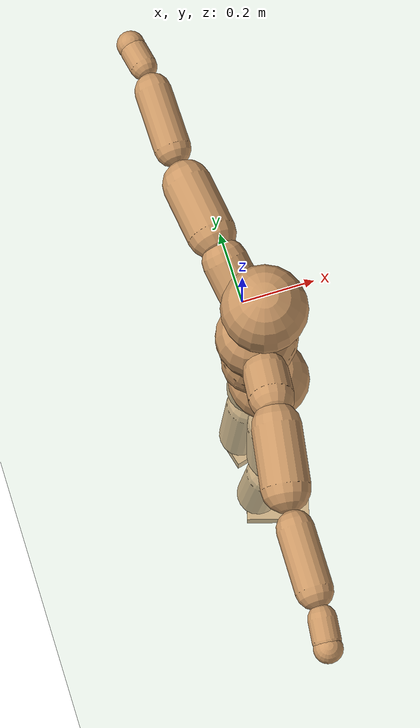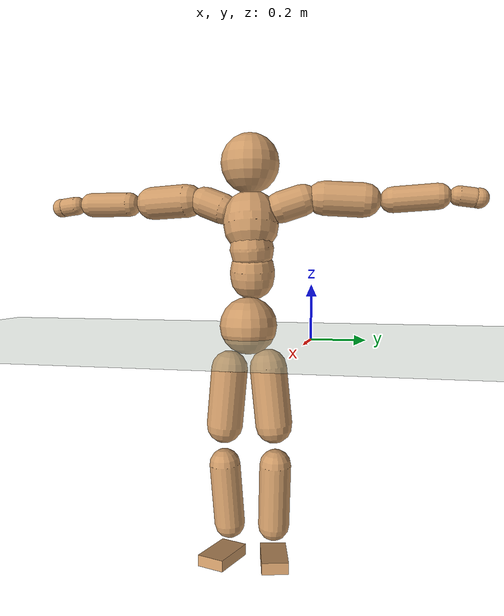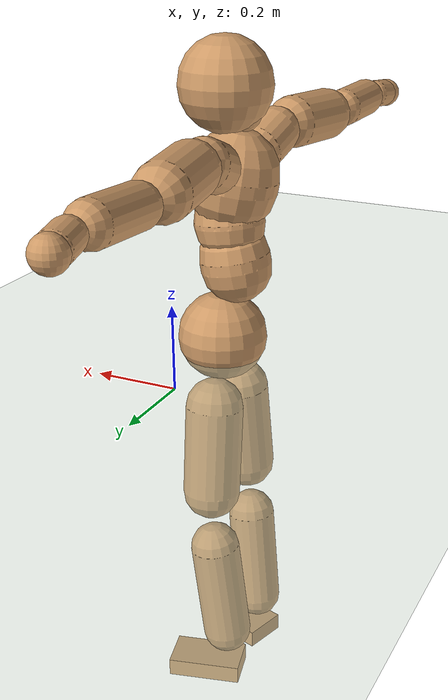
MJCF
<mujoco model="humanoid">
  <compiler coordinate="local"/>
  <default>
    <joint damping="0.0" armature="0.01" stiffness="0.0" limited="true"/>
    <geom conaffinity="1" condim="3" contype="7" margin="0.001" rgba="0.8 0.6 .4 1"/>
  </default>
  <asset>
    <texture type="skybox" builtin="gradient" rgb1=".4 .5 .6" rgb2="0 0 0" width="100" height="100"/>
    <texture builtin="flat" height="1278" mark="cross" markrgb="1 1 1" name="texgeom" random="0.01" rgb1="0.8 0.6 0.4" rgb2="0.8 0.6 0.4" type="cube" width="127"/>
    <texture builtin="checker" height="100" name="texplane" rgb1="0 0 0" rgb2="0.8 0.8 0.8" type="2d" width="100"/>
    <material name="MatPlane" reflectance="0.5" shininess="1" specular="1" texrepeat="60 60" texture="texplane"/>
    <material name="geom" texture="texgeom" texuniform="true"/>
  </asset>
  <worldbody>
    <light cutoff="100" diffuse="1 1 1" dir="-0 0 -1.3" directional="true" exponent="1" pos="0 0 1.3" specular=".1 .1 .1"/>
    <geom conaffinity="1" condim="3" name="floor" pos="0 0 0" rgba="0.8 0.9 0.8 1" size="100 100 .2" type="plane" material="MatPlane"/>
    <body name="Pelvis" pos="-0.0024 -0.2377 0.0452">
      <freejoint name="Pelvis"/>
      <geom type="sphere" contype="1" conaffinity="1" density="500" size="0.1084" pos="0.0000 0.0000 0.0000" name="Pelvis"/>
      <body name="L_Hip" pos="-0.0129 0.0665 -0.0837">
        <joint name="L_Hip_x" type="hinge" pos="0 0 0" axis="1 0 0" stiffness="800" damping="80" armature="0.02" range="-180.0000 180.0000"/>
        <joint name="L_Hip_y" type="hinge" pos="0 0 0" axis="0 1 0" stiffness="800" damping="80" armature="0.02" range="-180.0000 180.0000"/>
        <joint name="L_Hip_z" type="hinge" pos="0 0 0" axis="0 0 1" stiffness="800" damping="80" armature="0.02" range="-180.0000 180.0000"/>
        <geom type="capsule" contype="1" conaffinity="1" density="500" fromto="0.0002 0.0076 -0.0745 0.0009 0.0304 -0.2980" size="0.0704" name="L_Hip"/>
        <body name="L_Knee" pos="0.0011 0.038 -0.3725">
          <joint name="L_Knee_x" type="hinge" pos="0 0 0" axis="1 0 0" stiffness="800" damping="80" armature="0.02" range="-180.0000 180.0000"/>
          <joint name="L_Knee_y" type="hinge" pos="0 0 0" axis="0 1 0" stiffness="800" damping="80" armature="0.02" range="-180.0000 180.0000"/>
          <joint name="L_Knee_z" type="hinge" pos="0 0 0" axis="0 0 1" stiffness="800" damping="80" armature="0.02" range="-180.0000 180.0000"/>
          <geom type="capsule" contype="1" conaffinity="1" density="500" fromto="-0.0085 -0.0035 -0.0853 -0.0342 -0.0140 -0.3412" size="0.0611" name="L_Knee"/>
          <body name="L_Ankle" pos="-0.0427 -0.0175 -0.4265">
            <joint name="L_Ankle_x" type="hinge" pos="0 0 0" axis="1 0 0" stiffness="800" damping="80" armature="0.02" range="-180.0000 180.0000"/>
            <joint name="L_Ankle_y" type="hinge" pos="0 0 0" axis="0 1 0" stiffness="800" damping="80" armature="0.02" range="-180.0000 180.0000"/>
            <joint name="L_Ankle_z" type="hinge" pos="0 0 0" axis="0 0 1" stiffness="800" damping="80" armature="0.02" range="-180.0000 180.0000"/>
            <geom type="box" contype="1" conaffinity="1" density="500" pos="0.0618 0.0154 -0.0293" size="0.093 0.0515 0.0231" quat="0.9926 0.0000 0.0000 0.1215" name="L_Ankle"/>
            <body name="L_Toe" pos="0.1235 0.0307 -0.0586">
              <joint name="L_Toe_x" type="hinge" pos="0 0 0" axis="1 0 0" stiffness="500" damping="50" armature="0.02" range="-180.0000 180.0000"/>
              <joint name="L_Toe_y" type="hinge" pos="0 0 0" axis="0 1 0" stiffness="500" damping="50" armature="0.02" range="-180.0000 180.0000"/>
              <joint name="L_Toe_z" type="hinge" pos="0 0 0" axis="0 0 1" stiffness="500" damping="50" armature="0.02" range="-180.0000 180.0000"/>
              <geom type="box" contype="1" conaffinity="1" density="500" pos="0.0000 0.0000 0.0286" size="0.0011 0.0026 0.0011" quat="0.9919 0.0000 0.0000 0.1271" name="L_Toe"/>
            </body>
          </body>
        </body>
      </body>
      <body name="R_Hip" pos="-0.0067 -0.0694 -0.0922">
        <joint name="R_Hip_x" type="hinge" pos="0 0 0" axis="1 0 0" stiffness="800" damping="80" armature="0.02" range="-180.0000 180.0000"/>
        <joint name="R_Hip_y" type="hinge" pos="0 0 0" axis="0 1 0" stiffness="800" damping="80" armature="0.02" range="-180.0000 180.0000"/>
        <joint name="R_Hip_z" type="hinge" pos="0 0 0" axis="0 0 1" stiffness="800" damping="80" armature="0.02" range="-180.0000 180.0000"/>
        <geom type="capsule" contype="1" conaffinity="1" density="500" fromto="-0.0024 -0.0075 -0.0751 -0.0095 -0.0302 -0.3005" size="0.07" name="R_Hip"/>
        <body name="R_Knee" pos="-0.0119 -0.0377 -0.3757">
          <joint name="R_Knee_x" type="hinge" pos="0 0 0" axis="1 0 0" stiffness="800" damping="80" armature="0.02" range="-180.0000 180.0000"/>
          <joint name="R_Knee_y" type="hinge" pos="0 0 0" axis="0 1 0" stiffness="800" damping="80" armature="0.02" range="-180.0000 180.0000"/>
          <joint name="R_Knee_z" type="hinge" pos="0 0 0" axis="0 0 1" stiffness="800" damping="80" armature="0.02" range="-180.0000 180.0000"/>
          <geom type="capsule" contype="1" conaffinity="1" density="500" fromto="-0.0078 0.0041 -0.0841 -0.0314 0.0162 -0.3363" size="0.0605" name="R_Knee"/>
          <body name="R_Ankle" pos="-0.0392 0.0203 -0.4204">
            <joint name="R_Ankle_x" type="hinge" pos="0 0 0" axis="1 0 0" stiffness="800" damping="80" armature="0.02" range="-180.0000 180.0000"/>
            <joint name="R_Ankle_y" type="hinge" pos="0 0 0" axis="0 1 0" stiffness="800" damping="80" armature="0.02" range="-180.0000 180.0000"/>
            <joint name="R_Ankle_z" type="hinge" pos="0 0 0" axis="0 0 1" stiffness="800" damping="80" armature="0.02" range="-180.0000 180.0000"/>
            <geom type="box" contype="1" conaffinity="1" density="500" pos="0.0649 -0.0196 -0.0301" size="0.0899 0.0552 0.0225" quat="0.9893 0.0000 0.0000 -0.1457" name="R_Ankle"/>
            <body name="R_Toe" pos="0.1299 -0.0391 -0.0603">
              <joint name="R_Toe_x" type="hinge" pos="0 0 0" axis="1 0 0" stiffness="500" damping="50" armature="0.02" range="-180.0000 180.0000"/>
              <joint name="R_Toe_y" type="hinge" pos="0 0 0" axis="0 1 0" stiffness="500" damping="50" armature="0.02" range="-180.0000 180.0000"/>
              <joint name="R_Toe_z" type="hinge" pos="0 0 0" axis="0 0 1" stiffness="500" damping="50" armature="0.02" range="-180.0000 180.0000"/>
              <geom type="box" contype="1" conaffinity="1" density="500" pos="0.0000 0.0000 0.0297" size="0.0012 0.0027 0.0011" quat="0.9906 0.0000 0.0000 -0.1367" name="R_Toe"/>
            </body>
          </body>
        </body>
      </body>
      <body name="Torso" pos="-0.051 0.0048 0.1286">
        <joint name="Torso_x" type="hinge" pos="0 0 0" axis="1 0 0" stiffness="1000" damping="100" armature="0.02" range="-180.0000 180.0000"/>
        <joint name="Torso_y" type="hinge" pos="0 0 0" axis="0 1 0" stiffness="1000" damping="100" armature="0.02" range="-180.0000 180.0000"/>
        <joint name="Torso_z" type="hinge" pos="0 0 0" axis="0 0 1" stiffness="1000" damping="100" armature="0.02" range="-180.0000 180.0000"/>
        <geom type="capsule" contype="1" conaffinity="1" density="500" fromto="0.0133 0.0022 0.0792 0.0088 0.0015 0.0528" size="0.084258" name="Torso"/>
        <body name="Spine" pos="0.0221 0.0037 0.132">
          <joint name="Spine_x" type="hinge" pos="0 0 0" axis="1 0 0" stiffness="1000" damping="100" armature="0.02" range="-180.0000 180.0000"/>
          <joint name="Spine_y" type="hinge" pos="0 0 0" axis="0 1 0" stiffness="1000" damping="100" armature="0.02" range="-180.0000 180.0000"/>
          <joint name="Spine_z" type="hinge" pos="0 0 0" axis="0 0 1" stiffness="1000" damping="100" armature="0.02" range="-180.0000 180.0000"/>
          <geom type="capsule" contype="1" conaffinity="1" density="500" fromto="0.0038 -0.0015 0.0321 0.0025 -0.0010 0.0214" size="0.082863" name="Spine"/>
          <body name="Chest" pos="0.0063 -0.0025 0.0535">
            <joint name="Chest_x" type="hinge" pos="0 0 0" axis="1 0 0" stiffness="1000" damping="100" armature="0.02" range="-180.0000 180.0000"/>
            <joint name="Chest_y" type="hinge" pos="0 0 0" axis="0 1 0" stiffness="1000" damping="100" armature="0.02" range="-180.0000 180.0000"/>
            <joint name="Chest_z" type="hinge" pos="0 0 0" axis="0 0 1" stiffness="1000" damping="100" armature="0.02" range="-180.0000 180.0000"/>
            <geom type="capsule" contype="1" conaffinity="1" density="500" fromto="-0.0160 -0.0047 0.0877 -0.0107 -0.0031 0.0585" size="0.103881" name="Chest"/>
            <body name="Neck" pos="-0.0417 -0.0139 0.2091">
              <joint name="Neck_x" type="hinge" pos="0 0 0" axis="1 0 0" stiffness="500" damping="50" armature="0.02" range="-180.0000 180.0000"/>
              <joint name="Neck_y" type="hinge" pos="0 0 0" axis="0 1 0" stiffness="500" damping="50" armature="0.02" range="-180.0000 180.0000"/>
              <joint name="Neck_z" type="hinge" pos="0 0 0" axis="0 0 1" stiffness="500" damping="50" armature="0.02" range="-180.0000 180.0000"/>
              <geom type="capsule" contype="1" conaffinity="1" density="500" fromto="0.0092 0.0022 0.0150 0.0368 0.0087 0.0599" size="0.044082" name="Neck"/>
              <body name="Head" pos="0.046 0.0108 0.0749">
                <joint name="Head_x" type="hinge" pos="0 0 0" axis="1 0 0" stiffness="500" damping="50" armature="0.02" range="-180.0000 180.0000"/>
                <joint name="Head_y" type="hinge" pos="0 0 0" axis="0 1 0" stiffness="500" damping="50" armature="0.02" range="-180.0000 180.0000"/>
                <joint name="Head_z" type="hinge" pos="0 0 0" axis="0 0 1" stiffness="500" damping="50" armature="0.02" range="-180.0000 180.0000"/>
                <geom type="sphere" contype="1" conaffinity="1" density="500" size="0.1087" pos="0.0000 0.0000 0.0000" name="Head"/>
              </body>
            </body>
            <body name="L_Thorax" pos="-0.0158 0.0791 0.1158">
              <joint name="L_Thorax_x" type="hinge" pos="0 0 0" axis="1 0 0" stiffness="500" damping="50" armature="0.02" range="-180.0000 180.0000"/>
              <joint name="L_Thorax_y" type="hinge" pos="0 0 0" axis="0 1 0" stiffness="500" damping="50" armature="0.02" range="-180.0000 180.0000"/>
              <joint name="L_Thorax_z" type="hinge" pos="0 0 0" axis="0 0 1" stiffness="500" damping="50" armature="0.02" range="-180.0000 180.0000"/>
              <geom type="capsule" contype="1" conaffinity="1" density="500" fromto="-0.0053 0.0270 0.0089 -0.0211 0.1079 0.0357" size="0.0584" name="L_Thorax"/>
              <body name="L_Shoulder" pos="-0.0263 0.1349 0.0447">
                <joint name="L_Shoulder_x" type="hinge" pos="0 0 0" axis="1 0 0" stiffness="500" damping="50" armature="0.02" range="-720.0000 720.0000"/>
                <joint name="L_Shoulder_y" type="hinge" pos="0 0 0" axis="0 1 0" stiffness="500" damping="50" armature="0.02" range="-720.0000 720.0000"/>
                <joint name="L_Shoulder_z" type="hinge" pos="0 0 0" axis="0 0 1" stiffness="500" damping="50" armature="0.02" range="-720.0000 720.0000"/>
                <geom type="capsule" contype="1" conaffinity="1" density="500" fromto="-0.0060 0.0492 -0.0029 -0.0242 0.1968 -0.0115" size="0.0633" name="L_Shoulder"/>
                <body name="L_Elbow" pos="-0.0302 0.246 -0.0143">
                  <joint name="L_Elbow_x" type="hinge" pos="0 0 0" axis="1 0 0" stiffness="500" damping="50" armature="0.02" range="-720.0000 720.0000"/>
                  <joint name="L_Elbow_y" type="hinge" pos="0 0 0" axis="0 1 0" stiffness="500" damping="50" armature="0.02" range="-720.0000 720.0000"/>
                  <joint name="L_Elbow_z" type="hinge" pos="0 0 0" axis="0 0 1" stiffness="500" damping="50" armature="0.02" range="-720.0000 720.0000"/>
                  <geom type="capsule" contype="1" conaffinity="1" density="500" fromto="-0.0007 0.0535 0.0030 -0.0030 0.2138 0.0121" size="0.0475" name="L_Elbow"/>
                  <body name="L_Wrist" pos="-0.0037 0.2673 0.0151">
                    <joint name="L_Wrist_x" type="hinge" pos="0 0 0" axis="1 0 0" stiffness="300" damping="30" armature="0.02" range="-180.0000 180.0000"/>
                    <joint name="L_Wrist_y" type="hinge" pos="0 0 0" axis="0 1 0" stiffness="300" damping="30" armature="0.02" range="-180.0000 180.0000"/>
                    <joint name="L_Wrist_z" type="hinge" pos="0 0 0" axis="0 0 1" stiffness="300" damping="30" armature="0.02" range="-180.0000 180.0000"/>
                    <geom type="capsule" contype="1" conaffinity="1" density="500" fromto="-0.0031 0.0177 -0.0022 -0.0126 0.0707 -0.0090" size="0.0353" name="L_Wrist"/>
                    <body name="L_Hand" pos="-0.0157 0.0884 -0.0112">
                      <joint name="L_Hand_x" type="hinge" pos="0 0 0" axis="1 0 0" stiffness="300" damping="30" armature="0.02" range="-180.0000 180.0000"/>
                      <joint name="L_Hand_y" type="hinge" pos="0 0 0" axis="0 1 0" stiffness="300" damping="30" armature="0.02" range="-180.0000 180.0000"/>
                      <joint name="L_Hand_z" type="hinge" pos="0 0 0" axis="0 0 1" stiffness="300" damping="30" armature="0.02" range="-180.0000 180.0000"/>
                      <geom type="sphere" contype="1" conaffinity="1" density="500" size="0.0364" pos="0.0000 0.0000 0.0000" name="L_Hand"/>
                    </body>
                  </body>
                </body>
              </body>
            </body>
            <body name="R_Thorax" pos="-0.0226 -0.0887 0.1136">
              <joint name="R_Thorax_x" type="hinge" pos="0 0 0" axis="1 0 0" stiffness="500" damping="50" armature="0.02" range="-180.0000 180.0000"/>
              <joint name="R_Thorax_y" type="hinge" pos="0 0 0" axis="0 1 0" stiffness="500" damping="50" armature="0.02" range="-180.0000 180.0000"/>
              <joint name="R_Thorax_z" type="hinge" pos="0 0 0" axis="0 0 1" stiffness="500" damping="50" armature="0.02" range="-180.0000 180.0000"/>
              <geom type="capsule" contype="1" conaffinity="1" density="500" fromto="-0.0029 -0.0245 0.0095 -0.0114 -0.0979 0.0378" size="0.0576" name="R_Thorax"/>
              <body name="R_Shoulder" pos="-0.0143 -0.1224 0.0473">
                <joint name="R_Shoulder_x" type="hinge" pos="0 0 0" axis="1 0 0" stiffness="500" damping="50" armature="0.02" range="-720.0000 720.0000"/>
                <joint name="R_Shoulder_y" type="hinge" pos="0 0 0" axis="0 1 0" stiffness="500" damping="50" armature="0.02" range="-720.0000 720.0000"/>
                <joint name="R_Shoulder_z" type="hinge" pos="0 0 0" axis="0 0 1" stiffness="500" damping="50" armature="0.02" range="-720.0000 720.0000"/>
                <geom type="capsule" contype="1" conaffinity="1" density="500" fromto="-0.0083 -0.0509 -0.0018 -0.0332 -0.2036 -0.0071" size="0.063" name="R_Shoulder"/>
                <body name="R_Elbow" pos="-0.0414 -0.2545 -0.0089">
                  <joint name="R_Elbow_x" type="hinge" pos="0 0 0" axis="1 0 0" stiffness="500" damping="50" armature="0.02" range="-720.0000 720.0000"/>
                  <joint name="R_Elbow_y" type="hinge" pos="0 0 0" axis="0 1 0" stiffness="500" damping="50" armature="0.02" range="-720.0000 720.0000"/>
                  <joint name="R_Elbow_z" type="hinge" pos="0 0 0" axis="0 0 1" stiffness="500" damping="50" armature="0.02" range="-720.0000 720.0000"/>
                  <geom type="capsule" contype="1" conaffinity="1" density="500" fromto="-0.0010 -0.0529 0.0005 -0.0039 -0.2118 0.0019" size="0.0476" name="R_Elbow"/>
                  <body name="R_Wrist" pos="-0.0049 -0.2647 0.0023">
                    <joint name="R_Wrist_x" type="hinge" pos="0 0 0" axis="1 0 0" stiffness="300" damping="30" armature="0.02" range="-180.0000 180.0000"/>
                    <joint name="R_Wrist_y" type="hinge" pos="0 0 0" axis="0 1 0" stiffness="300" damping="30" armature="0.02" range="-180.0000 180.0000"/>
                    <joint name="R_Wrist_z" type="hinge" pos="0 0 0" axis="0 0 1" stiffness="300" damping="30" armature="0.02" range="-180.0000 180.0000"/>
                    <geom type="capsule" contype="1" conaffinity="1" density="500" fromto="-0.0020 -0.0180 -0.0018 -0.0080 -0.0720 -0.0074" size="0.0359" name="R_Wrist"/>
                    <body name="R_Hand" pos="-0.01 -0.0901 -0.0092">
                      <joint name="R_Hand_x" type="hinge" pos="0 0 0" axis="1 0 0" stiffness="300" damping="30" armature="0.02" range="-180.0000 180.0000"/>
                      <joint name="R_Hand_y" type="hinge" pos="0 0 0" axis="0 1 0" stiffness="300" damping="30" armature="0.02" range="-180.0000 180.0000"/>
                      <joint name="R_Hand_z" type="hinge" pos="0 0 0" axis="0 0 1" stiffness="300" damping="30" armature="0.02" range="-180.0000 180.0000"/>
                      <geom type="sphere" contype="1" conaffinity="1" density="500" size="0.0368" pos="0.0000 0.0000 0.0000" name="R_Hand"/>
                    </body>
                  </body>
                </body>
              </body>
            </body>
          </body>
        </body>
      </body>
    </body>
  </worldbody>
  <actuator>
    <motor name="L_Hip_x" joint="L_Hip_x" gear="500"/>
    <motor name="L_Hip_y" joint="L_Hip_y" gear="500"/>
    <motor name="L_Hip_z" joint="L_Hip_z" gear="500"/>
    <motor name="L_Knee_x" joint="L_Knee_x" gear="500"/>
    <motor name="L_Knee_y" joint="L_Knee_y" gear="500"/>
    <motor name="L_Knee_z" joint="L_Knee_z" gear="500"/>
    <motor name="L_Ankle_x" joint="L_Ankle_x" gear="500"/>
    <motor name="L_Ankle_y" joint="L_Ankle_y" gear="500"/>
    <motor name="L_Ankle_z" joint="L_Ankle_z" gear="500"/>
    <motor name="L_Toe_x" joint="L_Toe_x" gear="500"/>
    <motor name="L_Toe_y" joint="L_Toe_y" gear="500"/>
    <motor name="L_Toe_z" joint="L_Toe_z" gear="500"/>
    <motor name="R_Hip_x" joint="R_Hip_x" gear="500"/>
    <motor name="R_Hip_y" joint="R_Hip_y" gear="500"/>
    <motor name="R_Hip_z" joint="R_Hip_z" gear="500"/>
    <motor name="R_Knee_x" joint="R_Knee_x" gear="500"/>
    <motor name="R_Knee_y" joint="R_Knee_y" gear="500"/>
    <motor name="R_Knee_z" joint="R_Knee_z" gear="500"/>
    <motor name="R_Ankle_x" joint="R_Ankle_x" gear="500"/>
    <motor name="R_Ankle_y" joint="R_Ankle_y" gear="500"/>
    <motor name="R_Ankle_z" joint="R_Ankle_z" gear="500"/>
    <motor name="R_Toe_x" joint="R_Toe_x" gear="500"/>
    <motor name="R_Toe_y" joint="R_Toe_y" gear="500"/>
    <motor name="R_Toe_z" joint="R_Toe_z" gear="500"/>
    <motor name="Torso_x" joint="Torso_x" gear="500"/>
    <motor name="Torso_y" joint="Torso_y" gear="500"/>
    <motor name="Torso_z" joint="Torso_z" gear="500"/>
    <motor name="Spine_x" joint="Spine_x" gear="500"/>
    <motor name="Spine_y" joint="Spine_y" gear="500"/>
    <motor name="Spine_z" joint="Spine_z" gear="500"/>
    <motor name="Chest_x" joint="Chest_x" gear="500"/>
    <motor name="Chest_y" joint="Chest_y" gear="500"/>
    <motor name="Chest_z" joint="Chest_z" gear="500"/>
    <motor name="Neck_x" joint="Neck_x" gear="500"/>
    <motor name="Neck_y" joint="Neck_y" gear="500"/>
    <motor name="Neck_z" joint="Neck_z" gear="500"/>
    <motor name="Head_x" joint="Head_x" gear="500"/>
    <motor name="Head_y" joint="Head_y" gear="500"/>
    <motor name="Head_z" joint="Head_z" gear="500"/>
    <motor name="L_Thorax_x" joint="L_Thorax_x" gear="500"/>
    <motor name="L_Thorax_y" joint="L_Thorax_y" gear="500"/>
    <motor name="L_Thorax_z" joint="L_Thorax_z" gear="500"/>
    <motor name="L_Shoulder_x" joint="L_Shoulder_x" gear="500"/>
    <motor name="L_Shoulder_y" joint="L_Shoulder_y" gear="500"/>
    <motor name="L_Shoulder_z" joint="L_Shoulder_z" gear="500"/>
    <motor name="L_Elbow_x" joint="L_Elbow_x" gear="500"/>
    <motor name="L_Elbow_y" joint="L_Elbow_y" gear="500"/>
    <motor name="L_Elbow_z" joint="L_Elbow_z" gear="500"/>
    <motor name="L_Wrist_x" joint="L_Wrist_x" gear="500"/>
    <motor name="L_Wrist_y" joint="L_Wrist_y" gear="500"/>
    <motor name="L_Wrist_z" joint="L_Wrist_z" gear="500"/>
    <motor name="L_Hand_x" joint="L_Hand_x" gear="500"/>
    <motor name="L_Hand_y" joint="L_Hand_y" gear="500"/>
    <motor name="L_Hand_z" joint="L_Hand_z" gear="500"/>
    <motor name="R_Thorax_x" joint="R_Thorax_x" gear="500"/>
    <motor name="R_Thorax_y" joint="R_Thorax_y" gear="500"/>
    <motor name="R_Thorax_z" joint="R_Thorax_z" gear="500"/>
    <motor name="R_Shoulder_x" joint="R_Shoulder_x" gear="500"/>
    <motor name="R_Shoulder_y" joint="R_Shoulder_y" gear="500"/>
    <motor name="R_Shoulder_z" joint="R_Shoulder_z" gear="500"/>
    <motor name="R_Elbow_x" joint="R_Elbow_x" gear="500"/>
    <motor name="R_Elbow_y" joint="R_Elbow_y" gear="500"/>
    <motor name="R_Elbow_z" joint="R_Elbow_z" gear="500"/>
    <motor name="R_Wrist_x" joint="R_Wrist_x" gear="500"/>
    <motor name="R_Wrist_y" joint="R_Wrist_y" gear="500"/>
    <motor name="R_Wrist_z" joint="R_Wrist_z" gear="500"/>
    <motor name="R_Hand_x" joint="R_Hand_x" gear="500"/>
    <motor name="R_Hand_y" joint="R_Hand_y" gear="500"/>
    <motor name="R_Hand_z" joint="R_Hand_z" gear="500"/>
  </actuator>
  <contact>
    <exclude body1="Torso" body2="Chest"/>
    <exclude body1="Head" body2="Chest"/>
    <exclude body1="R_Knee" body2="R_Toe"/>
    <exclude body1="R_Knee" body2="L_Ankle"/>
    <exclude body1="R_Knee" body2="L_Toe"/>
    <exclude body1="L_Knee" body2="L_Toe"/>
    <exclude body1="L_Knee" body2="R_Ankle"/>
    <exclude body1="L_Knee" body2="R_Toe"/>
    <exclude body1="L_Shoulder" body2="Chest"/>
    <exclude body1="R_Shoulder" body2="Chest"/>
  </contact>
  <sensor/>
  <size njmax="700" nconmax="700"/>
</mujoco>
